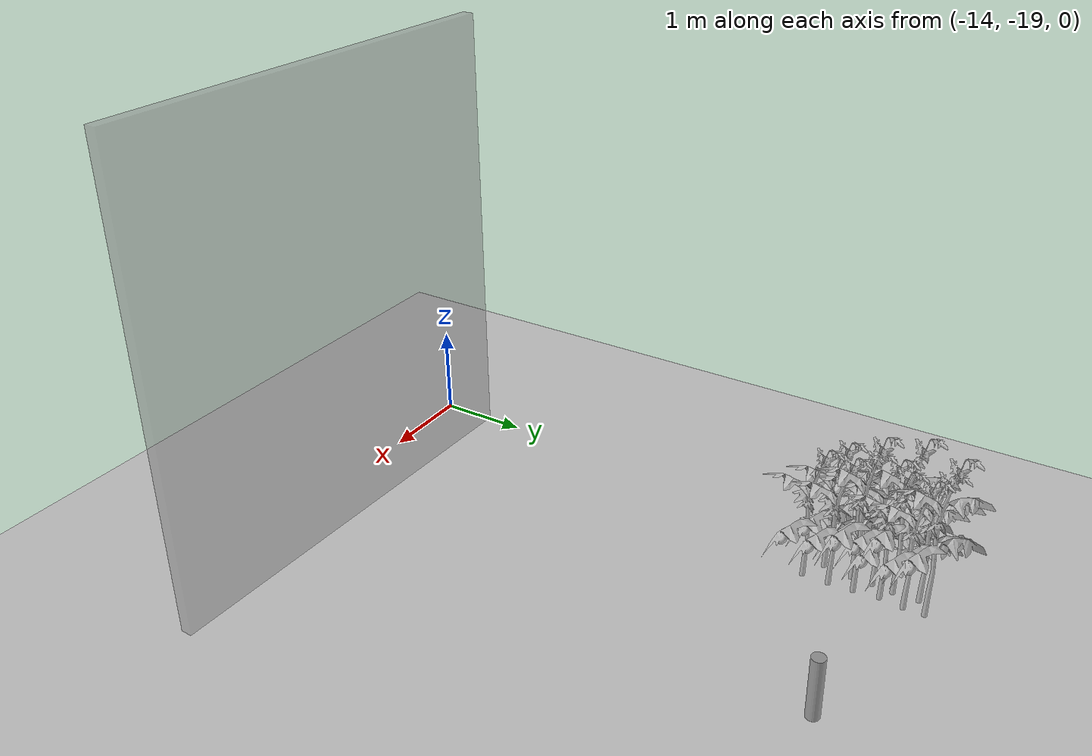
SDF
<sdf version="1.6">
 <world name="default">
  <model name="ground_plane">
   <static>1</static>
   <link name="link">
    <collision name="collision">
     <geometry><plane><normal>0 0 1</normal><size>100 100</size></plane></geometry>
     <surface>
      <contact><collide_bitmask>65535</collide_bitmask></contact>
      <friction><ode><mu>100</mu><mu2>50</mu2></ode></friction>
     </surface>
    </collision>
    <visual name="visual">
     <cast_shadows>0</cast_shadows>
     <geometry><plane><normal>0 0 1</normal><size>100 100</size></plane></geometry>
     <material>
      <script><uri>file://media/materials/scripts/gazebo.material</uri><name>Gazebo/Grey</name></script>
     </material>
    </visual>
   </link>
  </model>
  <model name="Front_Plant_1_0">
   <model name="tomato_plant_medium">
    <static>1</static>
    <link name="link">
     <collision name="collision">
      <pose>0 0 0 1.5708 -0 0</pose>
      <geometry><mesh><scale>0.5 0.5 0.5</scale><uri>model://stick/meshes/stick.dae</uri></mesh></geometry>
     </collision>
     <visual name="visual">
      <geometry>
       <mesh><scale>5e-06 5e-06 6e-06</scale><uri>model://tomato_plant_medium/meshes/tomato-plant.dae</uri></mesh>
      </geometry>
     </visual>
    </link>
    <pose>0.087453 -0.595994 0.012396 0 -0 0</pose>
   </model>
   <model name="tomato_plant_medium_0">
    <static>1</static>
    <link name="link">
     <collision name="collision">
      <pose>0 0 0 1.5708 -0 0</pose>
      <geometry><mesh><scale>0.5 0.5 0.5</scale><uri>model://stick/meshes/stick.dae</uri></mesh></geometry>
     </collision>
     <visual name="visual">
      <geometry>
       <mesh><scale>5e-06 5e-06 6e-06</scale><uri>model://tomato_plant_medium/meshes/tomato-plant.dae</uri></mesh>
      </geometry>
     </visual>
    </link>
    <pose>-0.086166 -0.251822 0.012396 0 -0 0</pose>
   </model>
   <model name="tomato_plant_medium_1">
    <static>1</static>
    <link name="link">
     <collision name="collision">
      <pose>0 0 0 1.5708 -0 0</pose>
      <geometry><mesh><scale>0.5 0.5 0.5</scale><uri>model://stick/meshes/stick.dae</uri></mesh></geometry>
     </collision>
     <visual name="visual">
      <geometry>
       <mesh><scale>5e-06 5e-06 6e-06</scale><uri>model://tomato_plant_medium/meshes/tomato-plant.dae</uri></mesh>
      </geometry>
     </visual>
    </link>
    <pose>0.080199 0.118127 0.012396 0 -0 0</pose>
   </model>
   <model name="tomato_plant_small">
    <static>1</static>
    <link name="link">
     <collision name="collision">
      <pose>0 0 0 1.5708 -0 0</pose>
      <geometry><mesh><scale>0.5 0.45 0.5</scale><uri>model://stick/meshes/stick.dae</uri></mesh></geometry>
     </collision>
     <visual name="visual">
      <geometry>
       <mesh><scale>5e-06 5e-06 5e-06</scale><uri>model://tomato_plant_small/meshes/tomato-plant.dae</uri></mesh>
      </geometry>
     </visual>
    </link>
    <pose>0.099683 -1.12011 0.012396 0 -0 0</pose>
   </model>
   <model name="tomato_plant_small_0">
    <static>1</static>
    <link name="link">
     <collision name="collision">
      <pose>0 0 0 1.5708 -0 0</pose>
      <geometry><mesh><scale>0.5 0.45 0.5</scale><uri>model://stick/meshes/stick.dae</uri></mesh></geometry>
     </collision>
     <visual name="visual">
      <geometry>
       <mesh><scale>5e-06 5e-06 5e-06</scale><uri>model://tomato_plant_small/meshes/tomato-plant.dae</uri></mesh>
      </geometry>
     </visual>
    </link>
    <pose>-0.138771 -0.983982 0.012396 0 -0 0</pose>
   </model>
   <model name="tomato_plant_small_1">
    <static>1</static>
    <link name="link">
     <collision name="collision">
      <pose>0 0 0 1.5708 -0 0</pose>
      <geometry><mesh><scale>0.5 0.45 0.5</scale><uri>model://stick/meshes/stick.dae</uri></mesh></geometry>
     </collision>
     <visual name="visual">
      <geometry>
       <mesh><scale>5e-06 5e-06 5e-06</scale><uri>model://tomato_plant_small/meshes/tomato-plant.dae</uri></mesh>
      </geometry>
     </visual>
    </link>
    <pose>0.101334 -0.848814 0.012396 0 -0 0</pose>
   </model>
   <model name="tomato_plant_small_2">
    <static>1</static>
    <link name="link">
     <collision name="collision">
      <pose>0 0 0 1.5708 -0 0</pose>
      <geometry><mesh><scale>0.5 0.45 0.5</scale><uri>model://stick/meshes/stick.dae</uri></mesh></geometry>
     </collision>
     <visual name="visual">
      <geometry>
       <mesh><scale>5e-06 5e-06 5e-06</scale><uri>model://tomato_plant_small/meshes/tomato-plant.dae</uri></mesh>
      </geometry>
     </visual>
    </link>
    <pose>-0.103369 -0.683189 0.012396 0 -0 0</pose>
   </model>
   <model name="tomato_plant_small_3">
    <static>1</static>
    <link name="link">
     <collision name="collision">
      <pose>0 0 0 1.5708 -0 0</pose>
      <geometry><mesh><scale>0.5 0.45 0.5</scale><uri>model://stick/meshes/stick.dae</uri></mesh></geometry>
     </collision>
     <visual name="visual">
      <geometry>
       <mesh><scale>5e-06 5e-06 5e-06</scale><uri>model://tomato_plant_small/meshes/tomato-plant.dae</uri></mesh>
      </geometry>
     </visual>
    </link>
    <pose>-0.104381 -0.464811 0.012396 0 -0 0</pose>
   </model>
   <model name="tomato_plant_small_4">
    <static>1</static>
    <link name="link">
     <collision name="collision">
      <pose>0 0 0 1.5708 -0 0</pose>
      <geometry><mesh><scale>0.5 0.45 0.5</scale><uri>model://stick/meshes/stick.dae</uri></mesh></geometry>
     </collision>
     <visual name="visual">
      <geometry>
       <mesh><scale>5e-06 5e-06 5e-06</scale><uri>model://tomato_plant_small/meshes/tomato-plant.dae</uri></mesh>
      </geometry>
     </visual>
    </link>
    <pose>0.055604 -0.336879 0.012396 0 -0 0</pose>
   </model>
   <model name="tomato_plant_small_5">
    <static>1</static>
    <link name="link">
     <collision name="collision">
      <pose>0 0 0 1.5708 -0 0</pose>
      <geometry><mesh><scale>0.5 0.45 0.5</scale><uri>model://stick/meshes/stick.dae</uri></mesh></geometry>
     </collision>
     <visual name="visual">
      <geometry>
       <mesh><scale>5e-06 5e-06 5e-06</scale><uri>model://tomato_plant_small/meshes/tomato-plant.dae</uri></mesh>
      </geometry>
     </visual>
    </link>
    <pose>0.085059 -0.092572 0.012396 0 -0 0</pose>
   </model>
   <model name="tomato_plant_small_6">
    <static>1</static>
    <link name="link">
     <collision name="collision">
      <pose>0 0 0 1.5708 -0 0</pose>
      <geometry><mesh><scale>0.5 0.45 0.5</scale><uri>model://stick/meshes/stick.dae</uri></mesh></geometry>
     </collision>
     <visual name="visual">
      <geometry>
       <mesh><scale>5e-06 5e-06 5e-06</scale><uri>model://tomato_plant_small/meshes/tomato-plant.dae</uri></mesh>
      </geometry>
     </visual>
    </link>
    <pose>-0.096345 0.008888 0.012396 0 -0 0</pose>
   </model>
   <static>0</static>
   <pose>-13.2256 -12.8592 0 0 -0 0</pose>
  </model>
  <model name="unit_cylinder_clone_0">
   <pose>-11.3508 -13.1374 0.361192 2.4e-05 -7.3e-05 -0.000952</pose>
   <link name="link">
    <inertial>
     <mass>1</mass>
     <inertia><ixx>0.145833</ixx><ixy>0</ixy><ixz>0</ixz><iyy>0.145833</iyy><iyz>0</iyz><izz>0.125</izz></inertia>
    </inertial>
    <collision name="collision">
     <geometry><cylinder><radius>0.0689988</radius><length>0.65346</length></cylinder></geometry>
    </collision>
    <visual name="visual">
     <geometry><cylinder><radius>0.0689988</radius><length>0.65346</length></cylinder></geometry>
     <material>
      <script><name>Gazebo/Grey</name><uri>file://media/materials/scripts/gazebo.material</uri></script>
     </material>
    </visual>
   </link>
  </model>
  <model name="wall_0_clone_0_clone_clone_1">
   <link name="link">
    <inertial>
     <mass>2.87883</mass>
     <inertia><ixx>11.0771</ixx><ixy>0</ixy><ixz>0</ixz><iyy>5.80298</iyy><iyz>0</iyz><izz>5.28163</izz></inertia>
    </inertial>
    <pose>0 -0.040293 1.94803 0 -0 0</pose>
    <visual name="visual">
     <geometry><box><size>0.12484 4.69043 4.91663</size></box></geometry>
     <material>
      <script><name>Gazebo/Grey</name><uri>file://media/materials/scripts/gazebo.material</uri></script>
      <ambient>0.3 0.3 0.3 1</ambient>
      <diffuse>0.7 0.7 0.7 1</diffuse>
      <specular>0.01 0.01 0.01 1</specular>
      <emissive>0 0 0 1</emissive>
      <shader type="vertex"><normal_map>__default__</normal_map></shader>
     </material>
     <transparency>0.5</transparency>
    </visual>
    <collision name="collision">
     <geometry><box><size>0.12484 4.69043 4.91663</size></box></geometry>
     <surface>
      <friction>
       <ode><mu>1</mu><mu2>1</mu2><fdir1>0 0 0</fdir1><slip1>0</slip1><slip2>0</slip2></ode>
       <torsional>
        <coefficient>1</coefficient>
        <patch_radius>0</patch_radius>
        <surface_radius>0</surface_radius>
        <use_patch_radius>1</use_patch_radius>
        <ode><slip>0</slip></ode>
       </torsional>
      </friction>
      <bounce><restitution_coefficient>0</restitution_coefficient><threshold>1e+06</threshold></bounce>
      <contact>
       <collide_without_contact>0</collide_without_contact>
       <collide_without_contact_bitmask>1</collide_without_contact_bitmask>
       <collide_bitmask>1</collide_bitmask>
       <ode>
        <soft_cfm>0</soft_cfm>
        <soft_erp>0.2</soft_erp>
        <kp>1e+13</kp>
        <kd>1</kd>
        <max_vel>0.01</max_vel>
        <min_depth>0</min_depth>
       </ode>
       <bullet>
        <split_impulse>1</split_impulse>
        <split_impulse_penetration_threshold>-0.01</split_impulse_penetration_threshold>
        <soft_cfm>0</soft_cfm>
        <soft_erp>0.2</soft_erp>
        <kp>1e+13</kp>
        <kd>1</kd>
       </bullet>
      </contact>
     </surface>
    </collision>
   </link>
   <static>0</static>
   <pose>-11.631 -18.521 0.520285 0 1e-06 -1.59146</pose>
  </model>
 </world>
</sdf>
